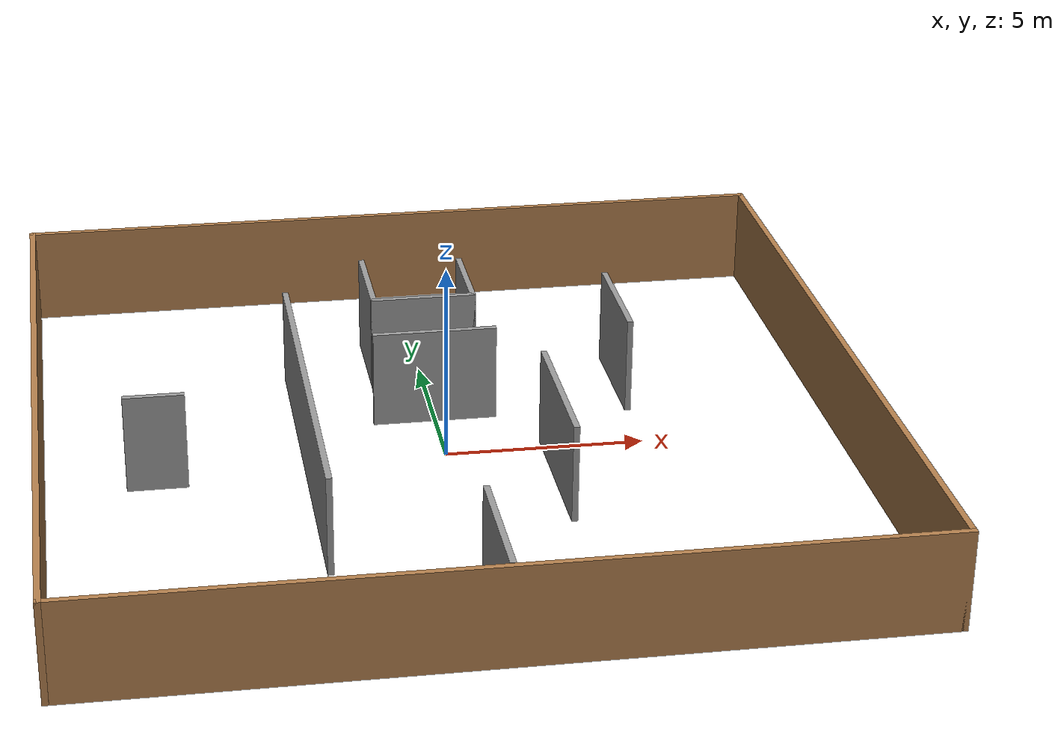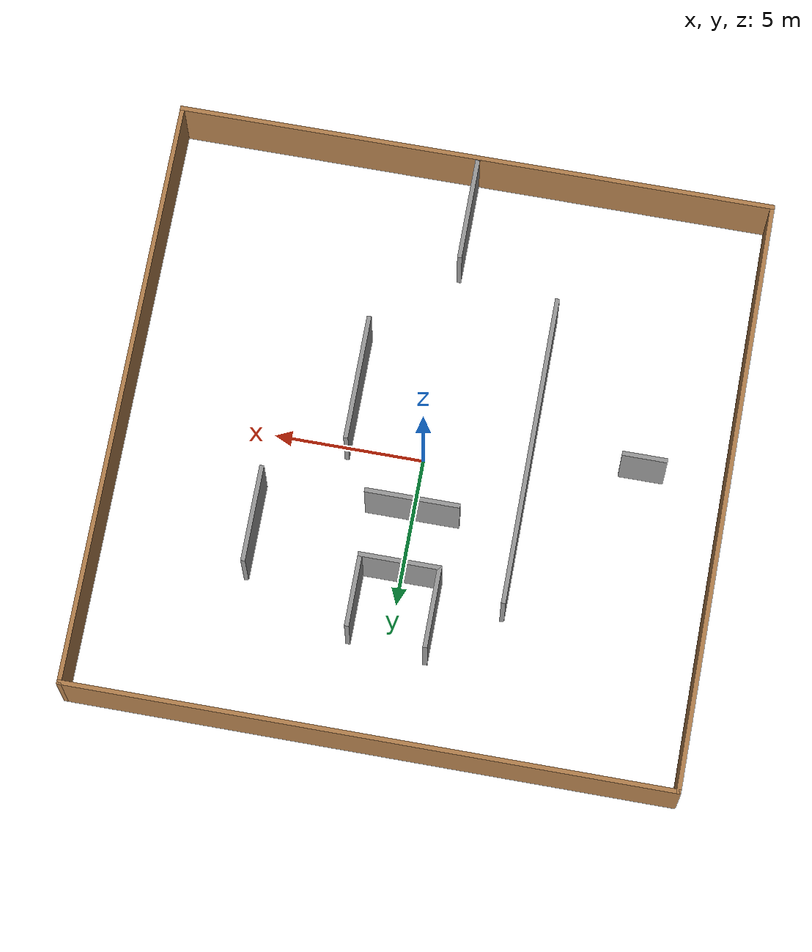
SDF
<?xml version='1.0'?>
<sdf version='1.7'>
  <model name='floorplan2'>
    <pose>0 0 0 0 -0 0</pose>
    <link name='Wall_0'>
      <collision name='Wall_0_Collision'>
        <geometry>
          <box>
            <size>20.15 0.15 2.5</size>
          </box>
        </geometry>
        <pose>0 0 1.25 0 -0 0</pose>
      </collision>
      <visual name='Wall_0_Visual'>
        <pose>0 0 1.25 0 -0 0</pose>
        <geometry>
          <box>
            <size>20.15 0.15 2.5</size>
          </box>
        </geometry>
        <material>
          <script>
            <uri>file://media/materials/scripts/gazebo.material</uri>
            <name>Gazebo/Wood</name>
          </script>
          <ambient>1 1 1 1</ambient>
        </material>
        <meta>
          <layer>0</layer>
        </meta>
      </visual>
      <pose>-10 0 0 0 -0 -1.5708</pose>
    </link>
    <link name='Wall_10'>
      <collision name='Wall_10_Collision'>
        <geometry>
          <box>
            <size>10.5 0.15 2.5</size>
          </box>
        </geometry>
        <pose>0 0 1.25 0 -0 0</pose>
      </collision>
      <visual name='Wall_10_Visual'>
        <pose>0 0 1.25 0 -0 0</pose>
        <geometry>
          <box>
            <size>10.5 0.15 2.5</size>
          </box>
        </geometry>
        <material>
          <script>
            <uri>file://media/materials/scripts/gazebo.material</uri>
            <name>Gazebo/Grey</name>
          </script>
          <ambient>1 1 1 1</ambient>
        </material>
        <meta>
          <layer>0</layer>
        </meta>
      </visual>
      <pose>-3.5 -0.303 0 0 -0 -1.5708</pose>
    </link>
    <link name='Wall_12'>
      <collision name='Wall_12_Collision'>
        <geometry>
          <box>
            <size>3.25 0.15 2.5</size>
          </box>
        </geometry>
        <pose>0 0 1.25 0 -0 0</pose>
      </collision>
      <visual name='Wall_12_Visual'>
        <pose>0 0 1.25 0 -0 0</pose>
        <geometry>
          <box>
            <size>3.25 0.15 2.5</size>
          </box>
        </geometry>
        <material>
          <script>
            <uri>file://media/materials/scripts/gazebo.material</uri>
            <name>Gazebo/Grey</name>
          </script>
          <ambient>1 1 1 1</ambient>
        </material>
        <meta>
          <layer>0</layer>
        </meta>
      </visual>
      <pose>5.00504 3.41338 0 0 -0 -1.5708</pose>
    </link>
    <link name='Wall_14'>
      <collision name='Wall_14_Collision'>
        <geometry>
          <box>
            <size>4.25 0.15 2.5</size>
          </box>
        </geometry>
        <pose>0 0 1.25 0 -0 0</pose>
      </collision>
      <visual name='Wall_14_Visual'>
        <pose>0 0 1.25 0 -0 0</pose>
        <geometry>
          <box>
            <size>4.25 0.15 2.5</size>
          </box>
        </geometry>
        <material>
          <script>
            <uri>file://media/materials/scripts/gazebo.material</uri>
            <name>Gazebo/Grey</name>
          </script>
          <ambient>1 1 1 1</ambient>
        </material>
        <meta>
          <layer>0</layer>
        </meta>
      </visual>
      <pose>2.5 -1.736 0 0 -0 -1.5708</pose>
    </link>
    <link name='Wall_16'>
      <collision name='Wall_16_Collision'>
        <geometry>
          <box>
            <size>1.5 0.15 2.5</size>
          </box>
        </geometry>
        <pose>0 0 1.25 0 -0 0</pose>
      </collision>
      <visual name='Wall_16_Visual'>
        <pose>0 0 1.25 0 -0 0</pose>
        <geometry>
          <box>
            <size>1.5 0.15 2.5</size>
          </box>
        </geometry>
        <material>
          <script>
            <uri>file://media/materials/scripts/gazebo.material</uri>
            <name>Gazebo/Grey</name>
          </script>
          <ambient>1 1 1 1</ambient>
        </material>
        <meta>
          <layer>0</layer>
        </meta>
      </visual>
      <pose>-7.19999 -0.696009 0 0 -0 0</pose>
    </link>
    <link name='Wall_18'>
      <collision name='Wall_18_Collision'>
        <geometry>
          <box>
            <size>2.75 0.15 2.5</size>
          </box>
        </geometry>
        <pose>0 0 1.25 0 -0 0</pose>
      </collision>
      <visual name='Wall_18_Visual'>
        <pose>0 0 1.25 0 -0 0</pose>
        <geometry>
          <box>
            <size>2.75 0.15 2.5</size>
          </box>
        </geometry>
        <material>
          <script>
            <uri>file://media/materials/scripts/gazebo.material</uri>
            <name>Gazebo/Grey</name>
          </script>
          <ambient>1 1 1 1</ambient>
        </material>
        <meta>
          <layer>0</layer>
        </meta>
      </visual>
      <pose>-1.28073 5.44782 0 0 -0 -1.5708</pose>
    </link>
    <link name='Wall_19'>
      <collision name='Wall_19_Collision'>
        <geometry>
          <box>
            <size>2.75 0.15 2.5</size>
          </box>
        </geometry>
        <pose>0 0 1.25 0 -0 0</pose>
      </collision>
      <visual name='Wall_19_Visual'>
        <pose>0 0 1.25 0 -0 0</pose>
        <geometry>
          <box>
            <size>2.75 0.15 2.5</size>
          </box>
        </geometry>
        <material>
          <script>
            <uri>file://media/materials/scripts/gazebo.material</uri>
            <name>Gazebo/Grey</name>
          </script>
          <ambient>1 1 1 1</ambient>
        </material>
        <meta>
          <layer>0</layer>
        </meta>
      </visual>
      <pose>0.019265 4.14782 0 0 -0 0</pose>
    </link>
    <link name='Wall_2'>
      <collision name='Wall_2_Collision'>
        <geometry>
          <box>
            <size>20.15 0.15 2.5</size>
          </box>
        </geometry>
        <pose>0 0 1.25 0 -0 0</pose>
      </collision>
      <visual name='Wall_2_Visual'>
        <pose>0 0 1.25 0 -0 0</pose>
        <geometry>
          <box>
            <size>20.15 0.15 2.5</size>
          </box>
        </geometry>
        <material>
          <script>
            <uri>file://media/materials/scripts/gazebo.material</uri>
            <name>Gazebo/Wood</name>
          </script>
          <ambient>1 1 1 1</ambient>
        </material>
        <meta>
          <layer>0</layer>
        </meta>
      </visual>
      <pose>0 -10 0 0 -0 0</pose>
    </link>
    <link name='Wall_20'>
      <collision name='Wall_20_Collision'>
        <geometry>
          <box>
            <size>2.5 0.15 2.5</size>
          </box>
        </geometry>
        <pose>0 0 1.25 0 -0 0</pose>
      </collision>
      <visual name='Wall_20_Visual'>
        <pose>0 0 1.25 0 -0 0</pose>
        <geometry>
          <box>
            <size>2.5 0.15 2.5</size>
          </box>
        </geometry>
        <material>
          <script>
            <uri>file://media/materials/scripts/gazebo.material</uri>
            <name>Gazebo/Grey</name>
          </script>
          <ambient>1 1 1 1</ambient>
        </material>
        <meta>
          <layer>0</layer>
        </meta>
      </visual>
      <pose>1.31926 5.32282 0 0 -0 1.5708</pose>
    </link>
    <link name='Wall_22'>
      <collision name='Wall_22_Collision'>
        <geometry>
          <box>
            <size>3.5 0.15 2.5</size>
          </box>
        </geometry>
        <pose>0 0 1.25 0 -0 0</pose>
      </collision>
      <visual name='Wall_22_Visual'>
        <pose>0 0 1.25 0 -0 0</pose>
        <geometry>
          <box>
            <size>3.5 0.15 2.5</size>
          </box>
        </geometry>
        <material>
          <script>
            <uri>file://media/materials/scripts/gazebo.material</uri>
            <name>Gazebo/Grey</name>
          </script>
          <ambient>1 1 1 1</ambient>
        </material>
        <meta>
          <layer>0</layer>
        </meta>
      </visual>
      <pose>-0.067068 -8.15616 0 0 -0 -1.5708</pose>
    </link>
    <link name='Wall_4'>
      <collision name='Wall_4_Collision'>
        <geometry>
          <box>
            <size>20.15 0.15 2.5</size>
          </box>
        </geometry>
        <pose>0 0 1.25 0 -0 0</pose>
      </collision>
      <visual name='Wall_4_Visual'>
        <pose>0 0 1.25 0 -0 0</pose>
        <geometry>
          <box>
            <size>20.15 0.15 2.5</size>
          </box>
        </geometry>
        <material>
          <script>
            <uri>file://media/materials/scripts/gazebo.material</uri>
            <name>Gazebo/Wood</name>
          </script>
          <ambient>1 1 1 1</ambient>
        </material>
        <meta>
          <layer>0</layer>
        </meta>
      </visual>
      <pose>10 0 0 0 -0 1.5708</pose>
    </link>
    <link name='Wall_6'>
      <collision name='Wall_6_Collision'>
        <geometry>
          <box>
            <size>20.15 0.15 2.5</size>
          </box>
        </geometry>
        <pose>0 0 1.25 0 -0 0</pose>
      </collision>
      <visual name='Wall_6_Visual'>
        <pose>0 0 1.25 0 -0 0</pose>
        <geometry>
          <box>
            <size>20.15 0.15 2.5</size>
          </box>
        </geometry>
        <material>
          <script>
            <uri>file://media/materials/scripts/gazebo.material</uri>
            <name>Gazebo/Wood</name>
          </script>
          <ambient>1 1 1 1</ambient>
        </material>
        <meta>
          <layer>0</layer>
        </meta>
      </visual>
      <pose>0 10 0 0 -0 3.14159</pose>
    </link>
    <link name='Wall_8'>
      <collision name='Wall_8_Collision'>
        <geometry>
          <box>
            <size>3.15 0.15 2.5</size>
          </box>
        </geometry>
        <pose>0 0 1.25 0 -0 0</pose>
      </collision>
      <visual name='Wall_8_Visual'>
        <pose>0 0 1.25 0 -0 0</pose>
        <geometry>
          <box>
            <size>3.15 0.15 2.5</size>
          </box>
        </geometry>
        <material>
          <script>
            <uri>file://media/materials/scripts/gazebo.material</uri>
            <name>Gazebo/Grey</name>
          </script>
          <ambient>1 1 1 1</ambient>
        </material>
        <meta>
          <layer>0</layer>
        </meta>
      </visual>
      <pose>0 2 0 0 -0 0</pose>
    </link>
    <static>1</static>
  </model>
</sdf>
